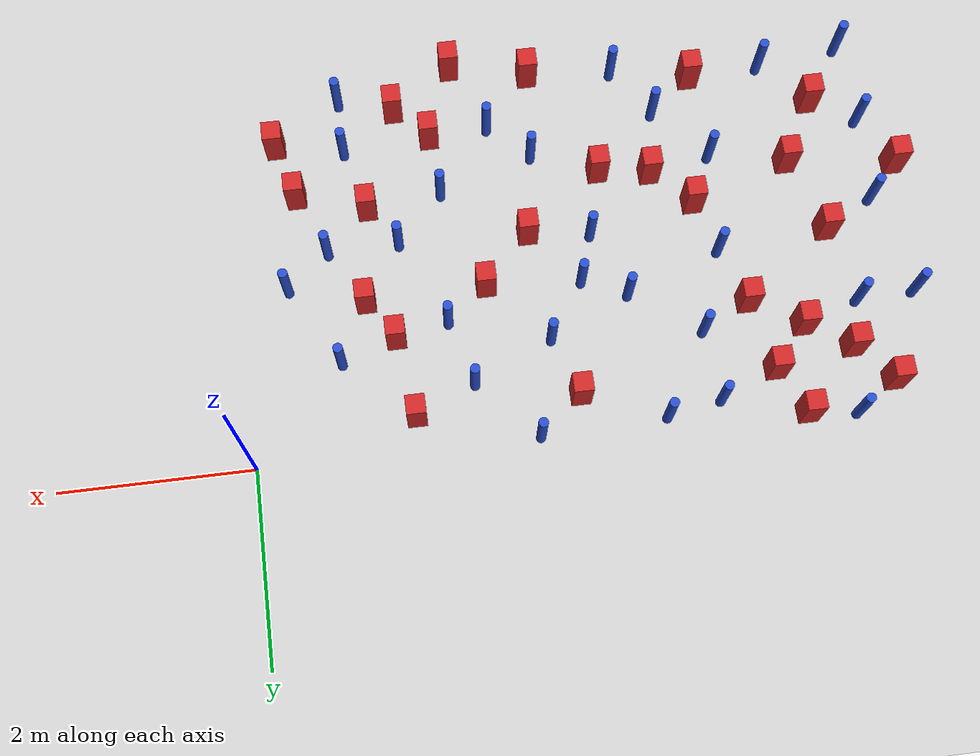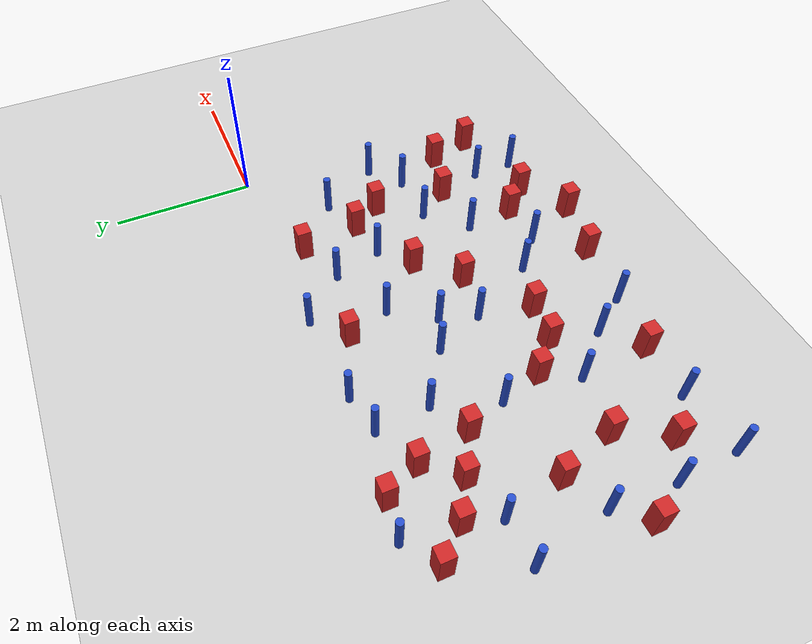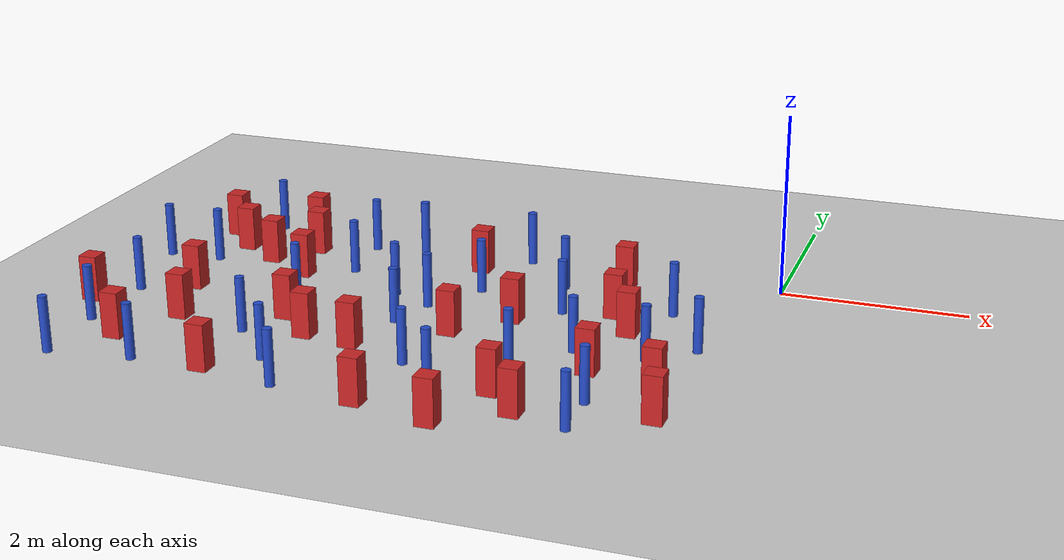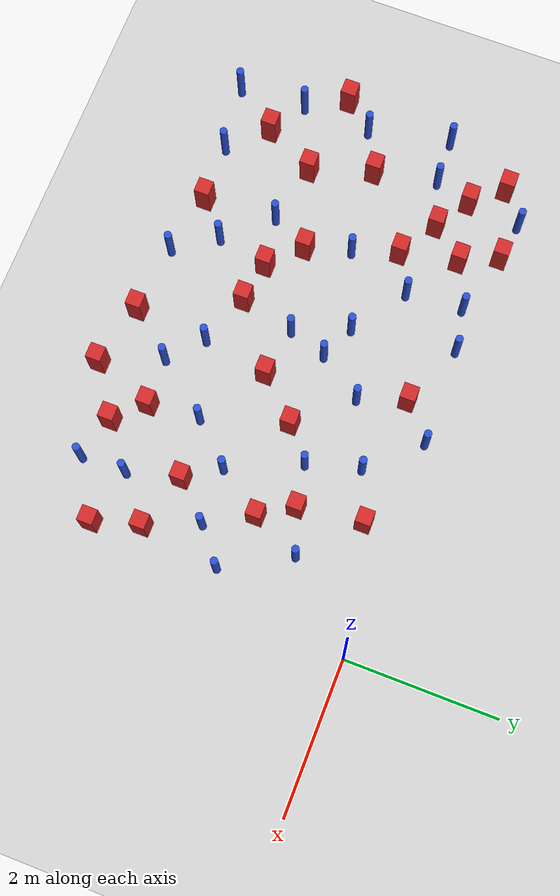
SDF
<sdf version="1.6">
 <world name="default">
  <model name="ground_plane">
   <static>1</static>
   <link name="link">
    <collision name="collision">
     <geometry><plane><normal>0 0 1</normal><size>100 100</size></plane></geometry>
     <surface><friction><ode><mu>100</mu><mu2>50</mu2></ode></friction></surface>
    </collision>
    <visual name="visual">
     <cast_shadows>0</cast_shadows>
     <geometry><plane><normal>0 0 1</normal><size>100 100</size></plane></geometry>
     <material>
      <ambient>1.0 1.0 1.0 1.0</ambient>
      <diffuse>0.8 0.8 0.8 1.0</diffuse>
      <specular>0.01 0.01 0.01 1.000000</specular>
     </material>
    </visual>
   </link>
  </model>
  <model name="square_post_obstacle0">
   <static>true</static>
   <pose>-3.012826389 -2.17743969788 1.91545236811e-07 -7.35059704564e-06 1.12565212e-07 2.39332434364e-05</pose>
   <link name="link">
    <pose>0 0 0.25 0 -0 0</pose>
    <inertial>
     <mass>100</mass>
     <inertia>
      <ixx>0.166667</ixx>
      <ixy>0</ixy>
      <ixz>0</ixz>
      <iyy>0.166667</iyy>
      <iyz>0</iyz>
      <izz>0.166667</izz>
     </inertia>
    </inertial>
    <collision name="collision"><geometry><box><size>.2 .2 .5</size></box></geometry></collision>
    <visual name="visual">
     <geometry><box><size>.2 .2 .5</size></box></geometry>
     <material>
      <script><name>Gazebo/Red</name><uri>file://media/materials/scripts/gazebo.material</uri></script>
     </material>
    </visual>
   </link>
  </model>
  <model name="pole_obstacle0">
   <static>true</static>
   <pose>-2.16096494241 -2.7342432716 7.38925637345e-09 -8.47170692798e-08 1.24976764939e-08 -1.74513093025e-07</pose>
   <link name="link">
    <pose>0 0 0.3 0 -0 0</pose>
    <inertial>
     <mass>1</mass>
     <inertia><ixx>0.145833</ixx><ixy>0</ixy><ixz>0</ixz><iyy>0.145833</iyy><iyz>0</iyz><izz>0.125</izz></inertia>
    </inertial>
    <collision name="collision">
     <geometry><cylinder><radius>0.05</radius><length>.6</length></cylinder></geometry>
    </collision>
    <visual name="visual">
     <geometry><cylinder><radius>0.05</radius><length>.6</length></cylinder></geometry>
     <material>
      <script><name>Gazebo/Blue</name><uri>file://media/materials/scripts/gazebo.material</uri></script>
     </material>
    </visual>
   </link>
  </model>
  <model name="square_post_obstacle4">
   <static>true</static>
   <pose>-2.10772842725 -3.40771525993 1.91545236811e-07 -7.35059704564e-06 1.12565212e-07 2.39332434364e-05</pose>
   <link name="link">
    <pose>0 0 0.25 0 -0 0</pose>
    <inertial>
     <mass>100</mass>
     <inertia>
      <ixx>0.166667</ixx>
      <ixy>0</ixy>
      <ixz>0</ixz>
      <iyy>0.166667</iyy>
      <iyz>0</iyz>
      <izz>0.166667</izz>
     </inertia>
    </inertial>
    <collision name="collision"><geometry><box><size>.2 .2 .5</size></box></geometry></collision>
    <visual name="visual">
     <geometry><box><size>.2 .2 .5</size></box></geometry>
     <material>
      <script><name>Gazebo/Red</name><uri>file://media/materials/scripts/gazebo.material</uri></script>
     </material>
    </visual>
   </link>
  </model>
  <model name="square_post_obstacle18">
   <static>true</static>
   <pose>-5.32597365988 -0.40058097915 1.91545236811e-07 -7.35059704564e-06 1.12565212e-07 2.39332434364e-05</pose>
   <link name="link">
    <pose>0 0 0.25 0 -0 0</pose>
    <inertial>
     <mass>100</mass>
     <inertia>
      <ixx>0.166667</ixx>
      <ixy>0</ixy>
      <ixz>0</ixz>
      <iyy>0.166667</iyy>
      <iyz>0</iyz>
      <izz>0.166667</izz>
     </inertia>
    </inertial>
    <collision name="collision"><geometry><box><size>.2 .2 .5</size></box></geometry></collision>
    <visual name="visual">
     <geometry><box><size>.2 .2 .5</size></box></geometry>
     <material>
      <script><name>Gazebo/Red</name><uri>file://media/materials/scripts/gazebo.material</uri></script>
     </material>
    </visual>
   </link>
  </model>
  <model name="pole_obstacle12">
   <static>true</static>
   <pose>-2.86380496484 0.0206646731336 7.38925637345e-09 -8.47170692793e-08 1.24976764457e-08 -1.74513093039e-07</pose>
   <link name="link">
    <pose>0 0 0.3 0 -0 0</pose>
    <inertial>
     <mass>1</mass>
     <inertia><ixx>0.145833</ixx><ixy>0</ixy><ixz>0</ixz><iyy>0.145833</iyy><iyz>0</iyz><izz>0.125</izz></inertia>
    </inertial>
    <collision name="collision">
     <geometry><cylinder><radius>0.05</radius><length>.6</length></cylinder></geometry>
    </collision>
    <visual name="visual">
     <geometry><cylinder><radius>0.05</radius><length>.6</length></cylinder></geometry>
     <material>
      <script><name>Gazebo/Blue</name><uri>file://media/materials/scripts/gazebo.material</uri></script>
     </material>
    </visual>
   </link>
  </model>
  <model name="square_post_obstacle21">
   <static>true</static>
   <pose>-4.98411081156 -3.79218492257 1.91545236811e-07 -7.35059704564e-06 1.12565212e-07 2.39332434364e-05</pose>
   <link name="link">
    <pose>0 0 0.25 0 -0 0</pose>
    <inertial>
     <mass>100</mass>
     <inertia>
      <ixx>0.166667</ixx>
      <ixy>0</ixy>
      <ixz>0</ixz>
      <iyy>0.166667</iyy>
      <iyz>0</iyz>
      <izz>0.166667</izz>
     </inertia>
    </inertial>
    <collision name="collision"><geometry><box><size>.2 .2 .5</size></box></geometry></collision>
    <visual name="visual">
     <geometry><box><size>.2 .2 .5</size></box></geometry>
     <material>
      <script><name>Gazebo/Red</name><uri>file://media/materials/scripts/gazebo.material</uri></script>
     </material>
    </visual>
   </link>
  </model>
  <model name="square_post_obstacle22">
   <static>true</static>
   <pose>-1.64915280023 -0.345057556898 1.91545236811e-07 -7.35059704564e-06 1.12565212e-07 2.39332434364e-05</pose>
   <link name="link">
    <pose>0 0 0.25 0 -0 0</pose>
    <inertial>
     <mass>100</mass>
     <inertia>
      <ixx>0.166667</ixx>
      <ixy>0</ixy>
      <ixz>0</ixz>
      <iyy>0.166667</iyy>
      <iyz>0</iyz>
      <izz>0.166667</izz>
     </inertia>
    </inertial>
    <collision name="collision"><geometry><box><size>.2 .2 .5</size></box></geometry></collision>
    <visual name="visual">
     <geometry><box><size>.2 .2 .5</size></box></geometry>
     <material>
      <script><name>Gazebo/Red</name><uri>file://media/materials/scripts/gazebo.material</uri></script>
     </material>
    </visual>
   </link>
  </model>
  <model name="square_post_obstacle26">
   <static>true</static>
   <pose>-4.38760822735 -2.71700138325 1.91545236811e-07 -7.35059704564e-06 1.12565212e-07 2.39332434364e-05</pose>
   <link name="link">
    <pose>0 0 0.25 0 -0 0</pose>
    <inertial>
     <mass>100</mass>
     <inertia>
      <ixx>0.166667</ixx>
      <ixy>0</ixy>
      <ixz>0</ixz>
      <iyy>0.166667</iyy>
      <iyz>0</iyz>
      <izz>0.166667</izz>
     </inertia>
    </inertial>
    <collision name="collision"><geometry><box><size>.2 .2 .5</size></box></geometry></collision>
    <visual name="visual">
     <geometry><box><size>.2 .2 .5</size></box></geometry>
     <material>
      <script><name>Gazebo/Red</name><uri>file://media/materials/scripts/gazebo.material</uri></script>
     </material>
    </visual>
   </link>
  </model>
  <model name="pole_obstacle18">
   <static>true</static>
   <pose>-4.15793994046 -0.0253211246921 7.38925637345e-09 -8.47170692799e-08 1.24976764994e-08 -1.74513093022e-07</pose>
   <link name="link">
    <pose>0 0 0.3 0 -0 0</pose>
    <inertial>
     <mass>1</mass>
     <inertia><ixx>0.145833</ixx><ixy>0</ixy><ixz>0</ixz><iyy>0.145833</iyy><iyz>0</iyz><izz>0.125</izz></inertia>
    </inertial>
    <collision name="collision">
     <geometry><cylinder><radius>0.05</radius><length>.6</length></cylinder></geometry>
    </collision>
    <visual name="visual">
     <geometry><cylinder><radius>0.05</radius><length>.6</length></cylinder></geometry>
     <material>
      <script><name>Gazebo/Blue</name><uri>file://media/materials/scripts/gazebo.material</uri></script>
     </material>
    </visual>
   </link>
  </model>
  <model name="pole_obstacle20">
   <static>true</static>
   <pose>-3.16024954971 -3.05051583281 7.38925637345e-09 -8.471706928e-08 1.24976765098e-08 -1.74513093016e-07</pose>
   <link name="link">
    <pose>0 0 0.3 0 -0 0</pose>
    <inertial>
     <mass>1</mass>
     <inertia><ixx>0.145833</ixx><ixy>0</ixy><ixz>0</ixz><iyy>0.145833</iyy><iyz>0</iyz><izz>0.125</izz></inertia>
    </inertial>
    <collision name="collision">
     <geometry><cylinder><radius>0.05</radius><length>.6</length></cylinder></geometry>
    </collision>
    <visual name="visual">
     <geometry><cylinder><radius>0.05</radius><length>.6</length></cylinder></geometry>
     <material>
      <script><name>Gazebo/Blue</name><uri>file://media/materials/scripts/gazebo.material</uri></script>
     </material>
    </visual>
   </link>
  </model>
  <model name="pole_obstacle21">
   <static>true</static>
   <pose>-6.66049323436 -2.1342443122 7.38925637345e-09 -8.47170692798e-08 1.24976764937e-08 -1.74513093023e-07</pose>
   <link name="link">
    <pose>0 0 0.3 0 -0 0</pose>
    <inertial>
     <mass>1</mass>
     <inertia><ixx>0.145833</ixx><ixy>0</ixy><ixz>0</ixz><iyy>0.145833</iyy><iyz>0</iyz><izz>0.125</izz></inertia>
    </inertial>
    <collision name="collision">
     <geometry><cylinder><radius>0.05</radius><length>.6</length></cylinder></geometry>
    </collision>
    <visual name="visual">
     <geometry><cylinder><radius>0.05</radius><length>.6</length></cylinder></geometry>
     <material>
      <script><name>Gazebo/Blue</name><uri>file://media/materials/scripts/gazebo.material</uri></script>
     </material>
    </visual>
   </link>
  </model>
  <model name="pole_obstacle28">
   <static>true</static>
   <pose>-4.52569087125 -3.40492318925 7.38925637345e-09 -8.47170692798e-08 1.24976764937e-08 -1.74513093023e-07</pose>
   <link name="link">
    <pose>0 0 0.3 0 -0 0</pose>
    <inertial>
     <mass>1</mass>
     <inertia><ixx>0.145833</ixx><ixy>0</ixy><ixz>0</ixz><iyy>0.145833</iyy><iyz>0</iyz><izz>0.125</izz></inertia>
    </inertial>
    <collision name="collision">
     <geometry><cylinder><radius>0.05</radius><length>.6</length></cylinder></geometry>
    </collision>
    <visual name="visual">
     <geometry><cylinder><radius>0.05</radius><length>.6</length></cylinder></geometry>
     <material>
      <script><name>Gazebo/Blue</name><uri>file://media/materials/scripts/gazebo.material</uri></script>
     </material>
    </visual>
   </link>
  </model>
  <model name="pole_obstacle30">
   <static>true</static>
   <pose>-6.64254924201 -3.94072420752 7.38925637345e-09 -8.47170692798e-08 1.24976764937e-08 -1.74513093023e-07</pose>
   <link name="link">
    <pose>0 0 0.3 0 -0 0</pose>
    <inertial>
     <mass>1</mass>
     <inertia><ixx>0.145833</ixx><ixy>0</ixy><ixz>0</ixz><iyy>0.145833</iyy><iyz>0</iyz><izz>0.125</izz></inertia>
    </inertial>
    <collision name="collision">
     <geometry><cylinder><radius>0.05</radius><length>.6</length></cylinder></geometry>
    </collision>
    <visual name="visual">
     <geometry><cylinder><radius>0.05</radius><length>.6</length></cylinder></geometry>
     <material>
      <script><name>Gazebo/Blue</name><uri>file://media/materials/scripts/gazebo.material</uri></script>
     </material>
    </visual>
   </link>
  </model>
  <model name="square_post_obstacle37">
   <static>true</static>
   <pose>-4.79022556475 -2.32345003283 1.91545236811e-07 -7.35059704564e-06 1.12565212e-07 2.39332434364e-05</pose>
   <link name="link">
    <pose>0 0 0.25 0 -0 0</pose>
    <inertial>
     <mass>100</mass>
     <inertia>
      <ixx>0.166667</ixx>
      <ixy>0</ixy>
      <ixz>0</ixz>
      <iyy>0.166667</iyy>
      <iyz>0</iyz>
      <izz>0.166667</izz>
     </inertia>
    </inertial>
    <collision name="collision"><geometry><box><size>.2 .2 .5</size></box></geometry></collision>
    <visual name="visual">
     <geometry><box><size>.2 .2 .5</size></box></geometry>
     <material>
      <script><name>Gazebo/Red</name><uri>file://media/materials/scripts/gazebo.material</uri></script>
     </material>
    </visual>
   </link>
  </model>
  <model name="pole_obstacle37">
   <static>true</static>
   <pose>-5.75870620214 -3.82260321715 7.38925637345e-09 -8.47170692798e-08 1.24976764937e-08 -1.74513093023e-07</pose>
   <link name="link">
    <pose>0 0 0.3 0 -0 0</pose>
    <inertial>
     <mass>1</mass>
     <inertia><ixx>0.145833</ixx><ixy>0</ixy><ixz>0</ixz><iyy>0.145833</iyy><iyz>0</iyz><izz>0.125</izz></inertia>
    </inertial>
    <collision name="collision">
     <geometry><cylinder><radius>0.05</radius><length>.6</length></cylinder></geometry>
    </collision>
    <visual name="visual">
     <geometry><cylinder><radius>0.05</radius><length>.6</length></cylinder></geometry>
     <material>
      <script><name>Gazebo/Blue</name><uri>file://media/materials/scripts/gazebo.material</uri></script>
     </material>
    </visual>
   </link>
  </model>
  <model name="square_post_obstacle38">
   <static>true</static>
   <pose>-0.467171544167 -3.48755937251 1.91545236811e-07 -7.35059704564e-06 1.12565212e-07 2.39332434364e-05</pose>
   <link name="link">
    <pose>0 0 0.25 0 -0 0</pose>
    <inertial>
     <mass>100</mass>
     <inertia>
      <ixx>0.166667</ixx>
      <ixy>0</ixy>
      <ixz>0</ixz>
      <iyy>0.166667</iyy>
      <iyz>0</iyz>
      <izz>0.166667</izz>
     </inertia>
    </inertial>
    <collision name="collision"><geometry><box><size>.2 .2 .5</size></box></geometry></collision>
    <visual name="visual">
     <geometry><box><size>.2 .2 .5</size></box></geometry>
     <material>
      <script><name>Gazebo/Red</name><uri>file://media/materials/scripts/gazebo.material</uri></script>
     </material>
    </visual>
   </link>
  </model>
  <model name="pole_obstacle42">
   <static>true</static>
   <pose>-1.17937432748 -3.92344625602 7.38925637345e-09 -8.47170692799e-08 1.24976765053e-08 -1.74513093017e-07</pose>
   <link name="link">
    <pose>0 0 0.3 0 -0 0</pose>
    <inertial>
     <mass>1</mass>
     <inertia><ixx>0.145833</ixx><ixy>0</ixy><ixz>0</ixz><iyy>0.145833</iyy><iyz>0</iyz><izz>0.125</izz></inertia>
    </inertial>
    <collision name="collision">
     <geometry><cylinder><radius>0.05</radius><length>.6</length></cylinder></geometry>
    </collision>
    <visual name="visual">
     <geometry><cylinder><radius>0.05</radius><length>.6</length></cylinder></geometry>
     <material>
      <script><name>Gazebo/Blue</name><uri>file://media/materials/scripts/gazebo.material</uri></script>
     </material>
    </visual>
   </link>
  </model>
  <model name="pole_obstacle44">
   <static>true</static>
   <pose>-6.06655194245 0.162308904674 7.38925637345e-09 -8.47170692801e-08 1.24976765186e-08 -1.74513093012e-07</pose>
   <link name="link">
    <pose>0 0 0.3 0 -0 0</pose>
    <inertial>
     <mass>1</mass>
     <inertia><ixx>0.145833</ixx><ixy>0</ixy><ixz>0</ixz><iyy>0.145833</iyy><iyz>0</iyz><izz>0.125</izz></inertia>
    </inertial>
    <collision name="collision">
     <geometry><cylinder><radius>0.05</radius><length>.6</length></cylinder></geometry>
    </collision>
    <visual name="visual">
     <geometry><cylinder><radius>0.05</radius><length>.6</length></cylinder></geometry>
     <material>
      <script><name>Gazebo/Blue</name><uri>file://media/materials/scripts/gazebo.material</uri></script>
     </material>
    </visual>
   </link>
  </model>
  <model name="pole_obstacle45">
   <static>true</static>
   <pose>-6.89498709493 -1.05610465739 7.38925637345e-09 -8.471706928e-08 1.24976765134e-08 -1.74513093015e-07</pose>
   <link name="link">
    <pose>0 0 0.3 0 -0 0</pose>
    <inertial>
     <mass>1</mass>
     <inertia><ixx>0.145833</ixx><ixy>0</ixy><ixz>0</ixz><iyy>0.145833</iyy><iyz>0</iyz><izz>0.125</izz></inertia>
    </inertial>
    <collision name="collision">
     <geometry><cylinder><radius>0.05</radius><length>.6</length></cylinder></geometry>
    </collision>
    <visual name="visual">
     <geometry><cylinder><radius>0.05</radius><length>.6</length></cylinder></geometry>
     <material>
      <script><name>Gazebo/Blue</name><uri>file://media/materials/scripts/gazebo.material</uri></script>
     </material>
    </visual>
   </link>
  </model>
  <model name="square_post_obstacle54">
   <static>true</static>
   <pose>-5.85119079972 -2.66866761416 1.91545236811e-07 -7.35059704564e-06 1.12565212e-07 2.39332434364e-05</pose>
   <link name="link">
    <pose>0 0 0.25 0 -0 0</pose>
    <inertial>
     <mass>100</mass>
     <inertia>
      <ixx>0.166667</ixx>
      <ixy>0</ixy>
      <ixz>0</ixz>
      <iyy>0.166667</iyy>
      <iyz>0</iyz>
      <izz>0.166667</izz>
     </inertia>
    </inertial>
    <collision name="collision"><geometry><box><size>.2 .2 .5</size></box></geometry></collision>
    <visual name="visual">
     <geometry><box><size>.2 .2 .5</size></box></geometry>
     <material>
      <script><name>Gazebo/Red</name><uri>file://media/materials/scripts/gazebo.material</uri></script>
     </material>
    </visual>
   </link>
  </model>
  <model name="pole_obstacle56">
   <static>true</static>
   <pose>-6.29355810708 -1.02710514931 7.38925637345e-09 -8.471706928e-08 1.24976765101e-08 -1.74513093015e-07</pose>
   <link name="link">
    <pose>0 0 0.3 0 -0 0</pose>
    <inertial>
     <mass>1</mass>
     <inertia><ixx>0.145833</ixx><ixy>0</ixy><ixz>0</ixz><iyy>0.145833</iyy><iyz>0</iyz><izz>0.125</izz></inertia>
    </inertial>
    <collision name="collision">
     <geometry><cylinder><radius>0.05</radius><length>.6</length></cylinder></geometry>
    </collision>
    <visual name="visual">
     <geometry><cylinder><radius>0.05</radius><length>.6</length></cylinder></geometry>
     <material>
      <script><name>Gazebo/Blue</name><uri>file://media/materials/scripts/gazebo.material</uri></script>
     </material>
    </visual>
   </link>
  </model>
  <model name="pole_obstacle64">
   <static>true</static>
   <pose>-3.49714249006 -1.57232614053 7.38925637345e-09 -8.47170692796e-08 1.24976764713e-08 -1.74513093037e-07</pose>
   <link name="link">
    <pose>0 0 0.3 0 -0 0</pose>
    <inertial>
     <mass>1</mass>
     <inertia><ixx>0.145833</ixx><ixy>0</ixy><ixz>0</ixz><iyy>0.145833</iyy><iyz>0</iyz><izz>0.125</izz></inertia>
    </inertial>
    <collision name="collision">
     <geometry><cylinder><radius>0.05</radius><length>.6</length></cylinder></geometry>
    </collision>
    <visual name="visual">
     <geometry><cylinder><radius>0.05</radius><length>.6</length></cylinder></geometry>
     <material>
      <script><name>Gazebo/Blue</name><uri>file://media/materials/scripts/gazebo.material</uri></script>
     </material>
    </visual>
   </link>
  </model>
  <model name="square_post_obstacle73">
   <static>true</static>
   <pose>-6.12534758709 -1.85529278886 1.91545236811e-07 -7.35059704564e-06 1.12565212e-07 2.39332434364e-05</pose>
   <link name="link">
    <pose>0 0 0.25 0 -0 0</pose>
    <inertial>
     <mass>100</mass>
     <inertia>
      <ixx>0.166667</ixx>
      <ixy>0</ixy>
      <ixz>0</ixz>
      <iyy>0.166667</iyy>
      <iyz>0</iyz>
      <izz>0.166667</izz>
     </inertia>
    </inertial>
    <collision name="collision"><geometry><box><size>.2 .2 .5</size></box></geometry></collision>
    <visual name="visual">
     <geometry><box><size>.2 .2 .5</size></box></geometry>
     <material>
      <script><name>Gazebo/Red</name><uri>file://media/materials/scripts/gazebo.material</uri></script>
     </material>
    </visual>
   </link>
  </model>
  <model name="pole_obstacle69">
   <static>true</static>
   <pose>-0.915841312205 -2.19848443857 7.38925637345e-09 -8.47170692799e-08 1.2497676509e-08 -1.74513093016e-07</pose>
   <link name="link">
    <pose>0 0 0.3 0 -0 0</pose>
    <inertial>
     <mass>1</mass>
     <inertia><ixx>0.145833</ixx><ixy>0</ixy><ixz>0</ixz><iyy>0.145833</iyy><iyz>0</iyz><izz>0.125</izz></inertia>
    </inertial>
    <collision name="collision">
     <geometry><cylinder><radius>0.05</radius><length>.6</length></cylinder></geometry>
    </collision>
    <visual name="visual">
     <geometry><cylinder><radius>0.05</radius><length>.6</length></cylinder></geometry>
     <material>
      <script><name>Gazebo/Blue</name><uri>file://media/materials/scripts/gazebo.material</uri></script>
     </material>
    </visual>
   </link>
  </model>
  <model name="pole_obstacle73">
   <static>true</static>
   <pose>-0.952721675624 -0.978285348717 7.38925637345e-09 -8.47170692799e-08 1.2497676503e-08 -1.74513093019e-07</pose>
   <link name="link">
    <pose>0 0 0.3 0 -0 0</pose>
    <inertial>
     <mass>1</mass>
     <inertia><ixx>0.145833</ixx><ixy>0</ixy><ixz>0</ixz><iyy>0.145833</iyy><iyz>0</iyz><izz>0.125</izz></inertia>
    </inertial>
    <collision name="collision">
     <geometry><cylinder><radius>0.05</radius><length>.6</length></cylinder></geometry>
    </collision>
    <visual name="visual">
     <geometry><cylinder><radius>0.05</radius><length>.6</length></cylinder></geometry>
     <material>
      <script><name>Gazebo/Blue</name><uri>file://media/materials/scripts/gazebo.material</uri></script>
     </material>
    </visual>
   </link>
  </model>
  <model name="pole_obstacle95">
   <static>true</static>
   <pose>-4.1543020539 -3.94412729907 7.38925637345e-09 -8.47170692798e-08 1.24976764937e-08 -1.74513093023e-07</pose>
   <link name="link">
    <pose>0 0 0.3 0 -0 0</pose>
    <inertial>
     <mass>1</mass>
     <inertia><ixx>0.145833</ixx><ixy>0</ixy><ixz>0</ixz><iyy>0.145833</iyy><iyz>0</iyz><izz>0.125</izz></inertia>
    </inertial>
    <collision name="collision">
     <geometry><cylinder><radius>0.05</radius><length>.6</length></cylinder></geometry>
    </collision>
    <visual name="visual">
     <geometry><cylinder><radius>0.05</radius><length>.6</length></cylinder></geometry>
     <material>
      <script><name>Gazebo/Blue</name><uri>file://media/materials/scripts/gazebo.material</uri></script>
     </material>
    </visual>
   </link>
  </model>
  <model name="square_post_obstacle87">
   <static>true</static>
   <pose>-3.317445202 -0.37275922119 1.91545236811e-07 -7.35059704564e-06 1.12565212e-07 2.39332434364e-05</pose>
   <link name="link">
    <pose>0 0 0.25 0 -0 0</pose>
    <inertial>
     <mass>100</mass>
     <inertia>
      <ixx>0.166667</ixx>
      <ixy>0</ixy>
      <ixz>0</ixz>
      <iyy>0.166667</iyy>
      <iyz>0</iyz>
      <izz>0.166667</izz>
     </inertia>
    </inertial>
    <collision name="collision"><geometry><box><size>.2 .2 .5</size></box></geometry></collision>
    <visual name="visual">
     <geometry><box><size>.2 .2 .5</size></box></geometry>
     <material>
      <script><name>Gazebo/Red</name><uri>file://media/materials/scripts/gazebo.material</uri></script>
     </material>
    </visual>
   </link>
  </model>
  <model name="square_post_obstacle90">
   <static>true</static>
   <pose>-1.75879823673 -3.76944561072 1.91545236811e-07 -7.35059704564e-06 1.12565212e-07 2.39332434364e-05</pose>
   <link name="link">
    <pose>0 0 0.25 0 -0 0</pose>
    <inertial>
     <mass>100</mass>
     <inertia>
      <ixx>0.166667</ixx>
      <ixy>0</ixy>
      <ixz>0</ixz>
      <iyy>0.166667</iyy>
      <iyz>0</iyz>
      <izz>0.166667</izz>
     </inertia>
    </inertial>
    <collision name="collision"><geometry><box><size>.2 .2 .5</size></box></geometry></collision>
    <visual name="visual">
     <geometry><box><size>.2 .2 .5</size></box></geometry>
     <material>
      <script><name>Gazebo/Red</name><uri>file://media/materials/scripts/gazebo.material</uri></script>
     </material>
    </visual>
   </link>
  </model>
  <model name="square_post_obstacle91">
   <static>true</static>
   <pose>-1.3728592606 -2.65545725702 1.91545236811e-07 -7.35059704564e-06 1.12565212e-07 2.39332434364e-05</pose>
   <link name="link">
    <pose>0 0 0.25 0 -0 0</pose>
    <inertial>
     <mass>100</mass>
     <inertia>
      <ixx>0.166667</ixx>
      <ixy>0</ixy>
      <ixz>0</ixz>
      <iyy>0.166667</iyy>
      <iyz>0</iyz>
      <izz>0.166667</izz>
     </inertia>
    </inertial>
    <collision name="collision"><geometry><box><size>.2 .2 .5</size></box></geometry></collision>
    <visual name="visual">
     <geometry><box><size>.2 .2 .5</size></box></geometry>
     <material>
      <script><name>Gazebo/Red</name><uri>file://media/materials/scripts/gazebo.material</uri></script>
     </material>
    </visual>
   </link>
  </model>
  <model name="square_post_obstacle92">
   <static>true</static>
   <pose>-5.69178511614 -0.836139567852 1.91545236811e-07 -7.35059704564e-06 1.12565212e-07 2.39332434364e-05</pose>
   <link name="link">
    <pose>0 0 0.25 0 -0 0</pose>
    <inertial>
     <mass>100</mass>
     <inertia>
      <ixx>0.166667</ixx>
      <ixy>0</ixy>
      <ixz>0</ixz>
      <iyy>0.166667</iyy>
      <iyz>0</iyz>
      <izz>0.166667</izz>
     </inertia>
    </inertial>
    <collision name="collision"><geometry><box><size>.2 .2 .5</size></box></geometry></collision>
    <visual name="visual">
     <geometry><box><size>.2 .2 .5</size></box></geometry>
     <material>
      <script><name>Gazebo/Red</name><uri>file://media/materials/scripts/gazebo.material</uri></script>
     </material>
    </visual>
   </link>
  </model>
  <model name="pole_obstacle109">
   <static>true</static>
   <pose>-4.71972342089 -0.132184833235 7.38925637345e-09 -8.471706928e-08 1.24976765188e-08 -1.74513093011e-07</pose>
   <link name="link">
    <pose>0 0 0.3 0 -0 0</pose>
    <inertial>
     <mass>1</mass>
     <inertia><ixx>0.145833</ixx><ixy>0</ixy><ixz>0</ixz><iyy>0.145833</iyy><iyz>0</iyz><izz>0.125</izz></inertia>
    </inertial>
    <collision name="collision">
     <geometry><cylinder><radius>0.05</radius><length>.6</length></cylinder></geometry>
    </collision>
    <visual name="visual">
     <geometry><cylinder><radius>0.05</radius><length>.6</length></cylinder></geometry>
     <material>
      <script><name>Gazebo/Blue</name><uri>file://media/materials/scripts/gazebo.material</uri></script>
     </material>
    </visual>
   </link>
  </model>
  <model name="pole_obstacle111">
   <static>true</static>
   <pose>-4.66102836811 -0.881114866257 7.38925637345e-09 -8.47170692799e-08 1.24976765038e-08 -1.74513093018e-07</pose>
   <link name="link">
    <pose>0 0 0.3 0 -0 0</pose>
    <inertial>
     <mass>1</mass>
     <inertia><ixx>0.145833</ixx><ixy>0</ixy><ixz>0</ixz><iyy>0.145833</iyy><iyz>0</iyz><izz>0.125</izz></inertia>
    </inertial>
    <collision name="collision">
     <geometry><cylinder><radius>0.05</radius><length>.6</length></cylinder></geometry>
    </collision>
    <visual name="visual">
     <geometry><cylinder><radius>0.05</radius><length>.6</length></cylinder></geometry>
     <material>
      <script><name>Gazebo/Blue</name><uri>file://media/materials/scripts/gazebo.material</uri></script>
     </material>
    </visual>
   </link>
  </model>
  <model name="square_post_obstacle99">
   <static>true</static>
   <pose>-2.41241000065 -4.20985774632 1.91545236811e-07 -7.35059704564e-06 1.12565212e-07 2.39332434364e-05</pose>
   <link name="link">
    <pose>0 0 0.25 0 -0 0</pose>
    <inertial>
     <mass>100</mass>
     <inertia>
      <ixx>0.166667</ixx>
      <ixy>0</ixy>
      <ixz>0</ixz>
      <iyy>0.166667</iyy>
      <iyz>0</iyz>
      <izz>0.166667</izz>
     </inertia>
    </inertial>
    <collision name="collision"><geometry><box><size>.2 .2 .5</size></box></geometry></collision>
    <visual name="visual">
     <geometry><box><size>.2 .2 .5</size></box></geometry>
     <material>
      <script><name>Gazebo/Red</name><uri>file://media/materials/scripts/gazebo.material</uri></script>
     </material>
    </visual>
   </link>
  </model>
  <model name="square_post_obstacle101">
   <static>true</static>
   <pose>-6.50137189918 -0.149099586672 1.91545236811e-07 -7.35059704564e-06 1.12565212e-07 2.39332434364e-05</pose>
   <link name="link">
    <pose>0 0 0.25 0 -0 0</pose>
    <inertial>
     <mass>100</mass>
     <inertia>
      <ixx>0.166667</ixx>
      <ixy>0</ixy>
      <ixz>0</ixz>
      <iyy>0.166667</iyy>
      <iyz>0</iyz>
      <izz>0.166667</izz>
     </inertia>
    </inertial>
    <collision name="collision"><geometry><box><size>.2 .2 .5</size></box></geometry></collision>
    <visual name="visual">
     <geometry><box><size>.2 .2 .5</size></box></geometry>
     <material>
      <script><name>Gazebo/Red</name><uri>file://media/materials/scripts/gazebo.material</uri></script>
     </material>
    </visual>
   </link>
  </model>
  <model name="square_post_obstacle107">
   <static>true</static>
   <pose>-3.8429119144 -2.7988107638 1.91545236811e-07 -7.35059704564e-06 1.12565212e-07 2.39332434364e-05</pose>
   <link name="link">
    <pose>0 0 0.25 0 -0 0</pose>
    <inertial>
     <mass>100</mass>
     <inertia>
      <ixx>0.166667</ixx>
      <ixy>0</ixy>
      <ixz>0</ixz>
      <iyy>0.166667</iyy>
      <iyz>0</iyz>
      <izz>0.166667</izz>
     </inertia>
    </inertial>
    <collision name="collision"><geometry><box><size>.2 .2 .5</size></box></geometry></collision>
    <visual name="visual">
     <geometry><box><size>.2 .2 .5</size></box></geometry>
     <material>
      <script><name>Gazebo/Red</name><uri>file://media/materials/scripts/gazebo.material</uri></script>
     </material>
    </visual>
   </link>
  </model>
  <model name="pole_obstacle126">
   <static>true</static>
   <pose>-3.66397949876 -2.08025835583 7.38925637345e-09 -8.47170692798e-08 1.24976764939e-08 -1.74513093025e-07</pose>
   <link name="link">
    <pose>0 0 0.3 0 -0 0</pose>
    <inertial>
     <mass>1</mass>
     <inertia><ixx>0.145833</ixx><ixy>0</ixy><ixz>0</ixz><iyy>0.145833</iyy><iyz>0</iyz><izz>0.125</izz></inertia>
    </inertial>
    <collision name="collision">
     <geometry><cylinder><radius>0.05</radius><length>.6</length></cylinder></geometry>
    </collision>
    <visual name="visual">
     <geometry><cylinder><radius>0.05</radius><length>.6</length></cylinder></geometry>
     <material>
      <script><name>Gazebo/Blue</name><uri>file://media/materials/scripts/gazebo.material</uri></script>
     </material>
    </visual>
   </link>
  </model>
  <model name="square_post_obstacle116">
   <static>true</static>
   <pose>-3.24419351278 -4.02363949103 1.91545236811e-07 -7.35059704564e-06 1.12565212e-07 2.39332434364e-05</pose>
   <link name="link">
    <pose>0 0 0.25 0 -0 0</pose>
    <inertial>
     <mass>100</mass>
     <inertia>
      <ixx>0.166667</ixx>
      <ixy>0</ixy>
      <ixz>0</ixz>
      <iyy>0.166667</iyy>
      <iyz>0</iyz>
      <izz>0.166667</izz>
     </inertia>
    </inertial>
    <collision name="collision"><geometry><box><size>.2 .2 .5</size></box></geometry></collision>
    <visual name="visual">
     <geometry><box><size>.2 .2 .5</size></box></geometry>
     <material>
      <script><name>Gazebo/Red</name><uri>file://media/materials/scripts/gazebo.material</uri></script>
     </material>
    </visual>
   </link>
  </model>
  <model name="square_post_obstacle139">
   <static>true</static>
   <pose>-1.52892218634 -1.1894286323 1.91545236811e-07 -7.35059704564e-06 1.12565212e-07 2.39332434364e-05</pose>
   <link name="link">
    <pose>0 0 0.25 0 -0 0</pose>
    <inertial>
     <mass>100</mass>
     <inertia>
      <ixx>0.166667</ixx>
      <ixy>0</ixy>
      <ixz>0</ixz>
      <iyy>0.166667</iyy>
      <iyz>0</iyz>
      <izz>0.166667</izz>
     </inertia>
    </inertial>
    <collision name="collision"><geometry><box><size>.2 .2 .5</size></box></geometry></collision>
    <visual name="visual">
     <geometry><box><size>.2 .2 .5</size></box></geometry>
     <material>
      <script><name>Gazebo/Red</name><uri>file://media/materials/scripts/gazebo.material</uri></script>
     </material>
    </visual>
   </link>
  </model>
  <model name="pole_obstacle155">
   <static>true</static>
   <pose>-2.07888299865 -1.29046747015 7.38925637345e-09 -8.471706928e-08 1.24976765152e-08 -1.74513093012e-07</pose>
   <link name="link">
    <pose>0 0 0.3 0 -0 0</pose>
    <inertial>
     <mass>1</mass>
     <inertia><ixx>0.145833</ixx><ixy>0</ixy><ixz>0</ixz><iyy>0.145833</iyy><iyz>0</iyz><izz>0.125</izz></inertia>
    </inertial>
    <collision name="collision">
     <geometry><cylinder><radius>0.05</radius><length>.6</length></cylinder></geometry>
    </collision>
    <visual name="visual">
     <geometry><cylinder><radius>0.05</radius><length>.6</length></cylinder></geometry>
     <material>
      <script><name>Gazebo/Blue</name><uri>file://media/materials/scripts/gazebo.material</uri></script>
     </material>
    </visual>
   </link>
  </model>
  <model name="square_post_obstacle145">
   <static>true</static>
   <pose>-6.21783190463 -3.35034156186 1.91545236811e-07 -7.35059704564e-06 1.12565212e-07 2.39332434364e-05</pose>
   <link name="link">
    <pose>0 0 0.25 0 -0 0</pose>
    <inertial>
     <mass>100</mass>
     <inertia>
      <ixx>0.166667</ixx>
      <ixy>0</ixy>
      <ixz>0</ixz>
      <iyy>0.166667</iyy>
      <iyz>0</iyz>
      <izz>0.166667</izz>
     </inertia>
    </inertial>
    <collision name="collision"><geometry><box><size>.2 .2 .5</size></box></geometry></collision>
    <visual name="visual">
     <geometry><box><size>.2 .2 .5</size></box></geometry>
     <material>
      <script><name>Gazebo/Red</name><uri>file://media/materials/scripts/gazebo.material</uri></script>
     </material>
    </visual>
   </link>
  </model>
  <model name="square_post_obstacle152">
   <static>true</static>
   <pose>-2.50814824153 -1.64826906417 1.91545236811e-07 -7.35059704564e-06 1.12565212e-07 2.39332434364e-05</pose>
   <link name="link">
    <pose>0 0 0.25 0 -0 0</pose>
    <inertial>
     <mass>100</mass>
     <inertia>
      <ixx>0.166667</ixx>
      <ixy>0</ixy>
      <ixz>0</ixz>
      <iyy>0.166667</iyy>
      <iyz>0</iyz>
      <izz>0.166667</izz>
     </inertia>
    </inertial>
    <collision name="collision"><geometry><box><size>.2 .2 .5</size></box></geometry></collision>
    <visual name="visual">
     <geometry><box><size>.2 .2 .5</size></box></geometry>
     <material>
      <script><name>Gazebo/Red</name><uri>file://media/materials/scripts/gazebo.material</uri></script>
     </material>
    </visual>
   </link>
  </model>
  <model name="square_post_obstacle157">
   <static>true</static>
   <pose>-0.641194777698 -2.87877739174 1.91545236811e-07 -7.35059704564e-06 1.12565212e-07 2.39332434364e-05</pose>
   <link name="link">
    <pose>0 0 0.25 0 -0 0</pose>
    <inertial>
     <mass>100</mass>
     <inertia>
      <ixx>0.166667</ixx>
      <ixy>0</ixy>
      <ixz>0</ixz>
      <iyy>0.166667</iyy>
      <iyz>0</iyz>
      <izz>0.166667</izz>
     </inertia>
    </inertial>
    <collision name="collision"><geometry><box><size>.2 .2 .5</size></box></geometry></collision>
    <visual name="visual">
     <geometry><box><size>.2 .2 .5</size></box></geometry>
     <material>
      <script><name>Gazebo/Red</name><uri>file://media/materials/scripts/gazebo.material</uri></script>
     </material>
    </visual>
   </link>
  </model>
  <model name="square_post_obstacle158">
   <static>true</static>
   <pose>-6.15089969593 -0.546183151569 1.91545236811e-07 -7.35059704564e-06 1.12565212e-07 2.39332434364e-05</pose>
   <link name="link">
    <pose>0 0 0.25 0 -0 0</pose>
    <inertial>
     <mass>100</mass>
     <inertia>
      <ixx>0.166667</ixx>
      <ixy>0</ixy>
      <ixz>0</ixz>
      <iyy>0.166667</iyy>
      <iyz>0</iyz>
      <izz>0.166667</izz>
     </inertia>
    </inertial>
    <collision name="collision"><geometry><box><size>.2 .2 .5</size></box></geometry></collision>
    <visual name="visual">
     <geometry><box><size>.2 .2 .5</size></box></geometry>
     <material>
      <script><name>Gazebo/Red</name><uri>file://media/materials/scripts/gazebo.material</uri></script>
     </material>
    </visual>
   </link>
  </model>
  <model name="square_post_obstacle162">
   <static>true</static>
   <pose>-5.16585393333 -1.15118554285 1.91545236811e-07 -7.35059704564e-06 1.12565212e-07 2.39332434364e-05</pose>
   <link name="link">
    <pose>0 0 0.25 0 -0 0</pose>
    <inertial>
     <mass>100</mass>
     <inertia>
      <ixx>0.166667</ixx>
      <ixy>0</ixy>
      <ixz>0</ixz>
      <iyy>0.166667</iyy>
      <iyz>0</iyz>
      <izz>0.166667</izz>
     </inertia>
    </inertial>
    <collision name="collision"><geometry><box><size>.2 .2 .5</size></box></geometry></collision>
    <visual name="visual">
     <geometry><box><size>.2 .2 .5</size></box></geometry>
     <material>
      <script><name>Gazebo/Red</name><uri>file://media/materials/scripts/gazebo.material</uri></script>
     </material>
    </visual>
   </link>
  </model>
  <model name="pole_obstacle175">
   <static>true</static>
   <pose>-5.04692965248 -2.82938438507 7.38925637345e-09 -8.47170692798e-08 1.24976764937e-08 -1.74513093023e-07</pose>
   <link name="link">
    <pose>0 0 0.3 0 -0 0</pose>
    <inertial>
     <mass>1</mass>
     <inertia><ixx>0.145833</ixx><ixy>0</ixy><ixz>0</ixz><iyy>0.145833</iyy><iyz>0</iyz><izz>0.125</izz></inertia>
    </inertial>
    <collision name="collision">
     <geometry><cylinder><radius>0.05</radius><length>.6</length></cylinder></geometry>
    </collision>
    <visual name="visual">
     <geometry><cylinder><radius>0.05</radius><length>.6</length></cylinder></geometry>
     <material>
      <script><name>Gazebo/Blue</name><uri>file://media/materials/scripts/gazebo.material</uri></script>
     </material>
    </visual>
   </link>
  </model>
  <model name="pole_obstacle180">
   <static>true</static>
   <pose>-3.10333314116 -0.984493112277 7.38925637345e-09 -8.47170692807e-08 1.24976765555e-08 -1.74513093003e-07</pose>
   <link name="link">
    <pose>0 0 0.3 0 -0 0</pose>
    <inertial>
     <mass>1</mass>
     <inertia><ixx>0.145833</ixx><ixy>0</ixy><ixz>0</ixz><iyy>0.145833</iyy><iyz>0</iyz><izz>0.125</izz></inertia>
    </inertial>
    <collision name="collision">
     <geometry><cylinder><radius>0.05</radius><length>.6</length></cylinder></geometry>
    </collision>
    <visual name="visual">
     <geometry><cylinder><radius>0.05</radius><length>.6</length></cylinder></geometry>
     <material>
      <script><name>Gazebo/Blue</name><uri>file://media/materials/scripts/gazebo.material</uri></script>
     </material>
    </visual>
   </link>
  </model>
  <model name="pole_obstacle184">
   <static>true</static>
   <pose>-2.27251165045 -0.602961266549 7.38925637345e-09 -8.471706928e-08 1.24976765177e-08 -1.74513093012e-07</pose>
   <link name="link">
    <pose>0 0 0.3 0 -0 0</pose>
    <inertial>
     <mass>1</mass>
     <inertia><ixx>0.145833</ixx><ixy>0</ixy><ixz>0</ixz><iyy>0.145833</iyy><iyz>0</iyz><izz>0.125</izz></inertia>
    </inertial>
    <collision name="collision">
     <geometry><cylinder><radius>0.05</radius><length>.6</length></cylinder></geometry>
    </collision>
    <visual name="visual">
     <geometry><cylinder><radius>0.05</radius><length>.6</length></cylinder></geometry>
     <material>
      <script><name>Gazebo/Blue</name><uri>file://media/materials/scripts/gazebo.material</uri></script>
     </material>
    </visual>
   </link>
  </model>
  <model name="square_post_obstacle181">
   <static>true</static>
   <pose>-1.25995250533 -1.61814822365 1.91545236811e-07 -7.35059704564e-06 1.12565212e-07 2.39332434364e-05</pose>
   <link name="link">
    <pose>0 0 0.25 0 -0 0</pose>
    <inertial>
     <mass>100</mass>
     <inertia>
      <ixx>0.166667</ixx>
      <ixy>0</ixy>
      <ixz>0</ixz>
      <iyy>0.166667</iyy>
      <iyz>0</iyz>
      <izz>0.166667</izz>
     </inertia>
    </inertial>
    <collision name="collision"><geometry><box><size>.2 .2 .5</size></box></geometry></collision>
    <visual name="visual">
     <geometry><box><size>.2 .2 .5</size></box></geometry>
     <material>
      <script><name>Gazebo/Red</name><uri>file://media/materials/scripts/gazebo.material</uri></script>
     </material>
    </visual>
   </link>
  </model>
  <model name="square_post_obstacle196">
   <static>true</static>
   <pose>-6.99045417196 -2.52399959396 1.91545236811e-07 -7.35059704564e-06 1.12565212e-07 2.39332434364e-05</pose>
   <link name="link">
    <pose>0 0 0.25 0 -0 0</pose>
    <inertial>
     <mass>100</mass>
     <inertia>
      <ixx>0.166667</ixx>
      <ixy>0</ixy>
      <ixz>0</ixz>
      <iyy>0.166667</iyy>
      <iyz>0</iyz>
      <izz>0.166667</izz>
     </inertia>
    </inertial>
    <collision name="collision"><geometry><box><size>.2 .2 .5</size></box></geometry></collision>
    <visual name="visual">
     <geometry><box><size>.2 .2 .5</size></box></geometry>
     <material>
      <script><name>Gazebo/Red</name><uri>file://media/materials/scripts/gazebo.material</uri></script>
     </material>
    </visual>
   </link>
  </model>
  <model name="square_post_obstacle200">
   <static>true</static>
   <pose>-5.5655785929 0.0886281439328 1.91545236811e-07 -7.35059704564e-06 1.12565212e-07 2.39332434364e-05</pose>
   <link name="link">
    <pose>0 0 0.25 0 -0 0</pose>
    <inertial>
     <mass>100</mass>
     <inertia>
      <ixx>0.166667</ixx>
      <ixy>0</ixy>
      <ixz>0</ixz>
      <iyy>0.166667</iyy>
      <iyz>0</iyz>
      <izz>0.166667</izz>
     </inertia>
    </inertial>
    <collision name="collision"><geometry><box><size>.2 .2 .5</size></box></geometry></collision>
    <visual name="visual">
     <geometry><box><size>.2 .2 .5</size></box></geometry>
     <material>
      <script><name>Gazebo/Red</name><uri>file://media/materials/scripts/gazebo.material</uri></script>
     </material>
    </visual>
   </link>
  </model>
  <model name="pole_obstacle194">
   <static>true</static>
   <pose>-3.95576945782 -1.37133650171 7.38925637345e-09 -8.47170692799e-08 1.24976765021e-08 -1.7451309302e-07</pose>
   <link name="link">
    <pose>0 0 0.3 0 -0 0</pose>
    <inertial>
     <mass>1</mass>
     <inertia><ixx>0.145833</ixx><ixy>0</ixy><ixz>0</ixz><iyy>0.145833</iyy><iyz>0</iyz><izz>0.125</izz></inertia>
    </inertial>
    <collision name="collision">
     <geometry><cylinder><radius>0.05</radius><length>.6</length></cylinder></geometry>
    </collision>
    <visual name="visual">
     <geometry><cylinder><radius>0.05</radius><length>.6</length></cylinder></geometry>
     <material>
      <script><name>Gazebo/Blue</name><uri>file://media/materials/scripts/gazebo.material</uri></script>
     </material>
    </visual>
   </link>
  </model>
  <model name="pole_obstacle197">
   <static>true</static>
   <pose>-4.96141695193 -1.74143720455 7.38925637345e-09 -8.471706928e-08 1.24976765134e-08 -1.74513093015e-07</pose>
   <link name="link">
    <pose>0 0 0.3 0 -0 0</pose>
    <inertial>
     <mass>1</mass>
     <inertia><ixx>0.145833</ixx><ixy>0</ixy><ixz>0</ixz><iyy>0.145833</iyy><iyz>0</iyz><izz>0.125</izz></inertia>
    </inertial>
    <collision name="collision">
     <geometry><cylinder><radius>0.05</radius><length>.6</length></cylinder></geometry>
    </collision>
    <visual name="visual">
     <geometry><cylinder><radius>0.05</radius><length>.6</length></cylinder></geometry>
     <material>
      <script><name>Gazebo/Blue</name><uri>file://media/materials/scripts/gazebo.material</uri></script>
     </material>
    </visual>
   </link>
  </model>
  <model name="pole_obstacle216">
   <static>true</static>
   <pose>-2.73598864333 -3.44025015302 7.38925637345e-09 -8.47170692798e-08 1.24976764939e-08 -1.74513093025e-07</pose>
   <link name="link">
    <pose>0 0 0.3 0 -0 0</pose>
    <inertial>
     <mass>1</mass>
     <inertia><ixx>0.145833</ixx><ixy>0</ixy><ixz>0</ixz><iyy>0.145833</iyy><iyz>0</iyz><izz>0.125</izz></inertia>
    </inertial>
    <collision name="collision">
     <geometry><cylinder><radius>0.05</radius><length>.6</length></cylinder></geometry>
    </collision>
    <visual name="visual">
     <geometry><cylinder><radius>0.05</radius><length>.6</length></cylinder></geometry>
     <material>
      <script><name>Gazebo/Blue</name><uri>file://media/materials/scripts/gazebo.material</uri></script>
     </material>
    </visual>
   </link>
  </model>
  <model name="pole_obstacle218">
   <static>true</static>
   <pose>-6.69853217409 -3.05402620315 7.38925637345e-09 -8.47170692798e-08 1.24976764937e-08 -1.74513093023e-07</pose>
   <link name="link">
    <pose>0 0 0.3 0 -0 0</pose>
    <inertial>
     <mass>1</mass>
     <inertia><ixx>0.145833</ixx><ixy>0</ixy><ixz>0</ixz><iyy>0.145833</iyy><iyz>0</iyz><izz>0.125</izz></inertia>
    </inertial>
    <collision name="collision">
     <geometry><cylinder><radius>0.05</radius><length>.6</length></cylinder></geometry>
    </collision>
    <visual name="visual">
     <geometry><cylinder><radius>0.05</radius><length>.6</length></cylinder></geometry>
     <material>
      <script><name>Gazebo/Blue</name><uri>file://media/materials/scripts/gazebo.material</uri></script>
     </material>
    </visual>
   </link>
  </model>
  <model name="pole_obstacle229">
   <static>true</static>
   <pose>-0.473190990425 -1.83226997922 7.38925637345e-09 -8.47170692799e-08 1.24976765087e-08 -1.74513093015e-07</pose>
   <link name="link">
    <pose>0 0 0.3 0 -0 0</pose>
    <inertial>
     <mass>1</mass>
     <inertia><ixx>0.145833</ixx><ixy>0</ixy><ixz>0</ixz><iyy>0.145833</iyy><iyz>0</iyz><izz>0.125</izz></inertia>
    </inertial>
    <collision name="collision">
     <geometry><cylinder><radius>0.05</radius><length>.6</length></cylinder></geometry>
    </collision>
    <visual name="visual">
     <geometry><cylinder><radius>0.05</radius><length>.6</length></cylinder></geometry>
     <material>
      <script><name>Gazebo/Blue</name><uri>file://media/materials/scripts/gazebo.material</uri></script>
     </material>
    </visual>
   </link>
  </model>
  <model name="pole_obstacle236">
   <static>true</static>
   <pose>-1.66232999043 -2.21445997922 7.38925637345e-09 -8.47170692799e-08 1.24976765052e-08 -1.74513093017e-07</pose>
   <link name="link">
    <pose>0 0 0.3 0 -0 0</pose>
    <inertial>
     <mass>1</mass>
     <inertia><ixx>0.145833</ixx><ixy>0</ixy><ixz>0</ixz><iyy>0.145833</iyy><iyz>0</iyz><izz>0.125</izz></inertia>
    </inertial>
    <collision name="collision">
     <geometry><cylinder><radius>0.05</radius><length>.6</length></cylinder></geometry>
    </collision>
    <visual name="visual">
     <geometry><cylinder><radius>0.05</radius><length>.6</length></cylinder></geometry>
     <material>
      <script><name>Gazebo/Blue</name><uri>file://media/materials/scripts/gazebo.material</uri></script>
     </material>
    </visual>
   </link>
  </model>
  <model name="pole_obstacle237">
   <static>true</static>
   <pose>-1.18680999043 -3.33279997922 7.38925637345e-09 -8.47170692793e-08 1.24976764479e-08 -1.74513093037e-07</pose>
   <link name="link">
    <pose>0 0 0.3 0 -0 0</pose>
    <inertial>
     <mass>1</mass>
     <inertia><ixx>0.145833</ixx><ixy>0</ixy><ixz>0</ixz><iyy>0.145833</iyy><iyz>0</iyz><izz>0.125</izz></inertia>
    </inertial>
    <collision name="collision">
     <geometry><cylinder><radius>0.05</radius><length>.6</length></cylinder></geometry>
    </collision>
    <visual name="visual">
     <geometry><cylinder><radius>0.05</radius><length>.6</length></cylinder></geometry>
     <material>
      <script><name>Gazebo/Blue</name><uri>file://media/materials/scripts/gazebo.material</uri></script>
     </material>
    </visual>
   </link>
  </model>
 </world>
</sdf>
